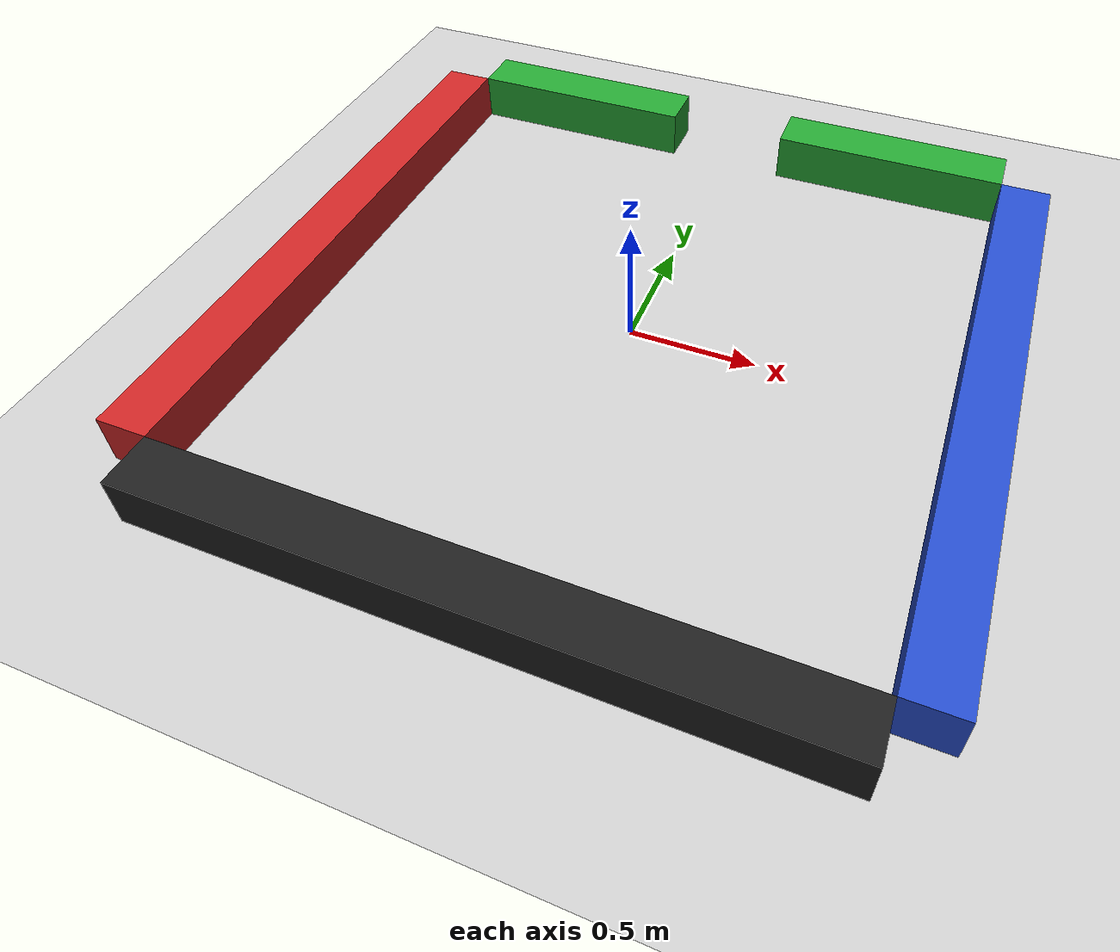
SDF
<sdf version="1.4">
 <world name="default">
  <include><uri>model://sun</uri></include>
  <include><uri>model://ground_plane</uri></include>
  <include><uri>model://gradient_room</uri></include>
 </world>
</sdf>

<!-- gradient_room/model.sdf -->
<sdf version="1.5">

  <!-- gradient_room (8ft x 8ft, single exit, gradient RGBK walls) // SDF MODEL DEFINITION -->
  <model name="gradient_room">
    <static>true</static>
    <link name="walls">

      <visual name="wall_NW_visual">
        <pose>-0.7346 1.3192 0.1 0 0 0</pose>
        <geometry>
          <box>
            <size>0.9692 0.2 0.2</size>
          </box>
        </geometry>
        <material>
          <script>
            <uri>model://gradient_room/materials/scripts</uri>
            <uri>model://gradient_room/materials/textures</uri>
            <name>green_gradient</name>
          </script>
        </material>
      </visual>
      <collision name="wall_NW_collision">
        <pose>-0.7346 1.3192 0.1 0 0 0</pose>
        <geometry>
          <box>
            <size>0.9692 0.2 0.2</size>
          </box>
        </geometry>
      </collision>

      <visual name="wall_NE_visual">
        <pose>0.7346 1.3192 0.1 0 0 0</pose>
        <geometry>
          <box>
            <size>0.9692 0.2 0.2</size>
          </box>
        </geometry>
        <material>
          <script>
            <uri>model://gradient_room/materials/scripts</uri>
            <uri>model://gradient_room/materials/textures</uri>
            <name>green_gradient_flip</name>
          </script>
        </material>
      </visual>
      <collision name="wall_NE_collision">
        <pose>0.7346 1.3192 0.1 0 0 0</pose>
        <geometry>
          <box>
            <size>0.9692 0.2 0.2</size>
          </box>
        </geometry>
      </collision>

      <visual name="wall_E_visual">
        <pose>1.3192 0 0.1 0 0 0</pose>
        <geometry>
          <box>
            <size>0.2 2.4384 0.2</size>
          </box>
        </geometry>
        <material>
          <script>
            <uri>model://gradient_room/materials/scripts</uri>
            <uri>model://gradient_room/materials/textures</uri>
            <name>blue_gradient</name>
          </script>
        </material>
      </visual>
      <collision name="wall_E_collision">
        <pose>1.3192 0 0.1 0 0 0</pose>
        <geometry>
          <box>
            <size>0.2 2.4384 0.2</size>
          </box>
        </geometry>
      </collision>

      <visual name="wall_S_visual">
        <pose>0 -1.3192 0.1 0 0 0</pose>
        <geometry>
          <box>
            <size>2.4384 0.2 0.2</size>
          </box>
        </geometry>
        <material>
          <script>
            <uri>model://gradient_room/materials/scripts</uri>
            <uri>model://gradient_room/materials/textures</uri>
            <name>black_gradient</name>
          </script>
        </material>
      </visual>
      <collision name="wall_S_collision">
        <pose>0 -1.3192 0.1 0 0 0</pose>
        <geometry>
          <box>
            <size>2.4384 0.2 0.2</size>
          </box>
        </geometry>
      </collision>

      <visual name="wall_W_visual">
        <pose>-1.3192 0 0.1 0 0 0</pose>
        <geometry>
          <box>
            <size>0.2 2.4384 0.2</size>
          </box>
        </geometry>
        <material>
          <script>
            <uri>model://gradient_room/materials/scripts</uri>
            <uri>model://gradient_room/materials/textures</uri>
            <name>red_gradient</name>
          </script>
        </material>
      </visual>
      <collision name="wall_W_collision">
        <pose>-1.3192 0 0.1 0 0 0</pose>
        <geometry>
          <box>
            <size>0.2 2.4384 0.2</size>
          </box>
        </geometry>
      </collision>

    </link>
  </model>
</sdf>
